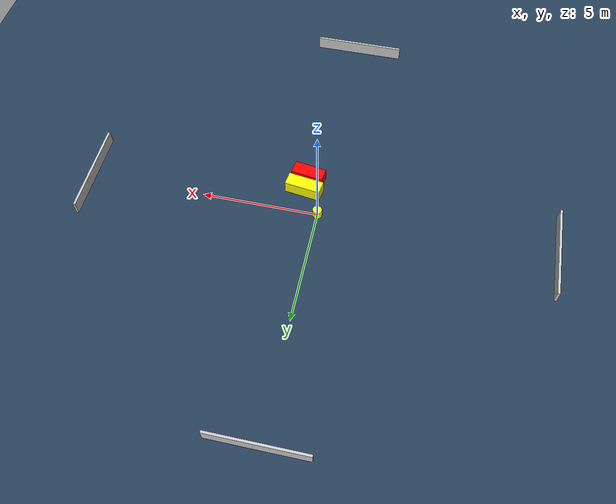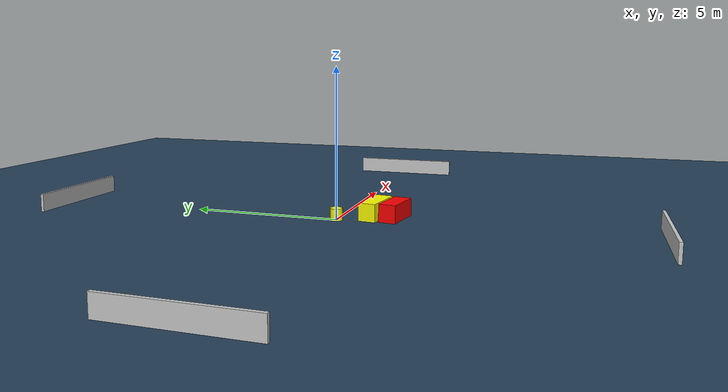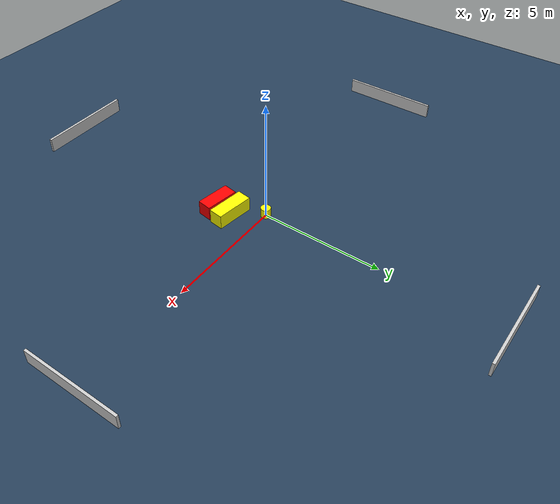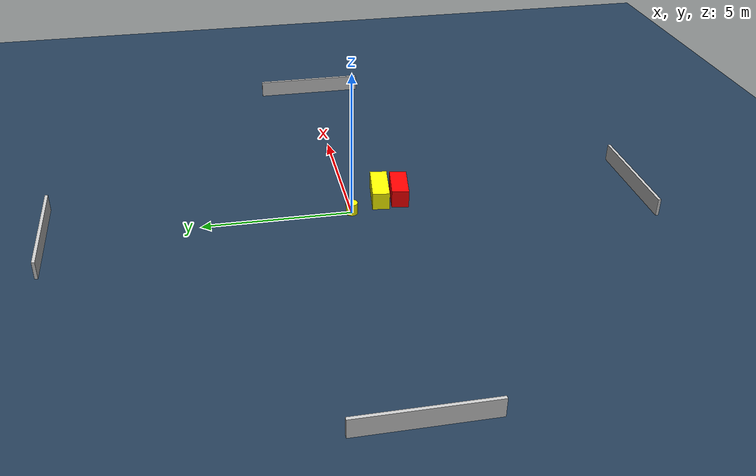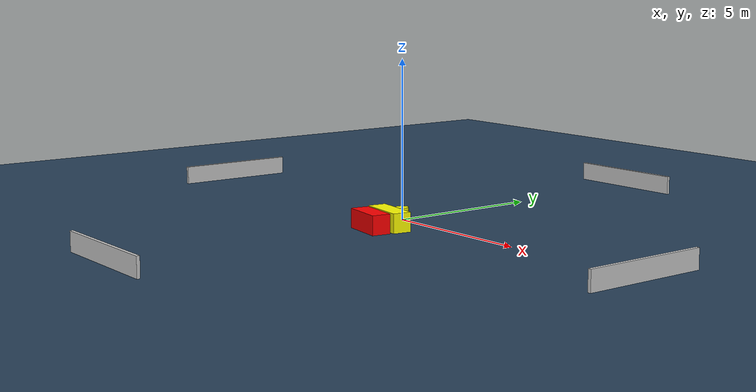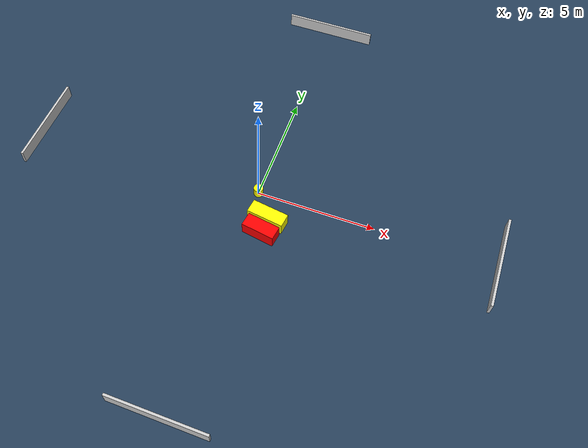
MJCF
<?xml version="1.0" ?>
<mujoco model="generated_environment">
  <option timestep="0.01" integrator="RK4" cone="elliptic"/>
  <default>
    <geom density="1"/>
  </default>
  <asset>
    <texture builtin="gradient" height="3072" name="skybox" rgb1="0.3 0.5 0.7" rgb2="0 0 0" type="skybox" width="512"/>
    <texture builtin="checker" height="300" name="groundplane" rgb1="0.2 0.3 0.4" rgb2="0.1 0.2 0.3" type="2d" width="300"/>
    <material name="groundplane" reflectance="0.2" texrepeat="5 5" texture="groundplane"/>
  </asset>
  <worldbody>
    <light dir="0 0 -1" directional="true" pos="0 0 1.5"/>
    <geom condim="3" friction="0.5 0.005 0.001" material="groundplane" name="floor" pos="0 0 0" size="0 0 0.05" type="plane"/>
    <body name="walls">
      <geom name="wall_1" condim="4" pos="-10.0 0.0 0.3" rgba="0.800000011920929 0.800000011920929 0.800000011920929 1.0" size="0.05 2.0 0.3" type="box"/>
      <geom name="wall_2" condim="4" pos="10.0 0.0 0.3" rgba="0.800000011920929 0.800000011920929 0.800000011920929 1.0" size="0.05 2.0 0.3" type="box"/>
      <geom name="wall_3" condim="4" pos="0.0 -10.0 0.3" rgba="0.800000011920929 0.800000011920929 0.800000011920929 1.0" size="2.0 0.05 0.3" type="box"/>
      <geom name="wall_4" condim="4" pos="0.0 10.0 0.3" rgba="0.800000011920929 0.800000011920929 0.800000011920929 1.0" size="2.0 0.05 0.3" type="box"/>
    </body>
    <body name="robot">
      <joint name="joint_x" type="slide" pos="0 0 0" axis="1 0 0"/>
      <joint name="joint_y" type="slide" pos="0 0 0" axis="0 1 0"/>
      <geom name="robot" type="cylinder" pos="0.0 0.0 0.2" size="0.2 0.2 0.0" mass="5.0" friction="1.0 0.005 0.0001" condim="4" rgba="1.0 1.0 0.0 1.0"/>
    </body>
    <body name="obstacle_1_movable">
      <geom name="obstacle_1_movable" condim="4" pos="0.8100896645220014 -1.1170212759986728 0.3" euler="0 0 352.12444640115956" friction="0.0 0.005 0.001" rgba="1.0 1.0 0.0 1.0" size="0.7744469488003682 0.29015381854004274 0.3" type="box" mass="0.1"/>
      <joint type="free"/>
    </body>
    <body name="obstacle_2_static">
      <geom name="obstacle_2_static" condim="4" pos="0.7556362370133121 -1.7845732793825677 0.3" euler="0 0 261.2249291191543" friction="0.0 0.005 0.001" rgba="1.0 0.0 0.0 1.0" size="0.29076200690250664 0.6936036950316391 0.3" type="box"/>
    </body>
  </worldbody>
  <actuator>
    <motor name="actuator_x" joint="joint_x" gear="1" ctrlrange="-1 1"/>
    <motor name="actuator_y" joint="joint_y" gear="1" ctrlrange="-1 1"/>
  </actuator>
</mujoco>
